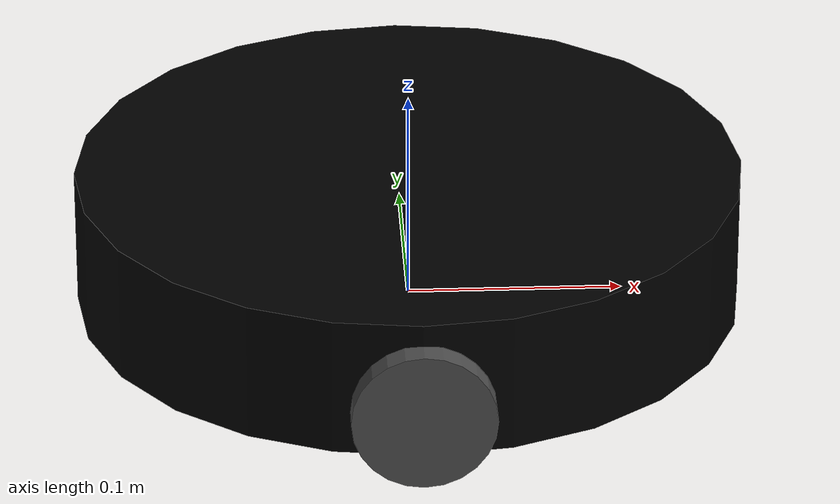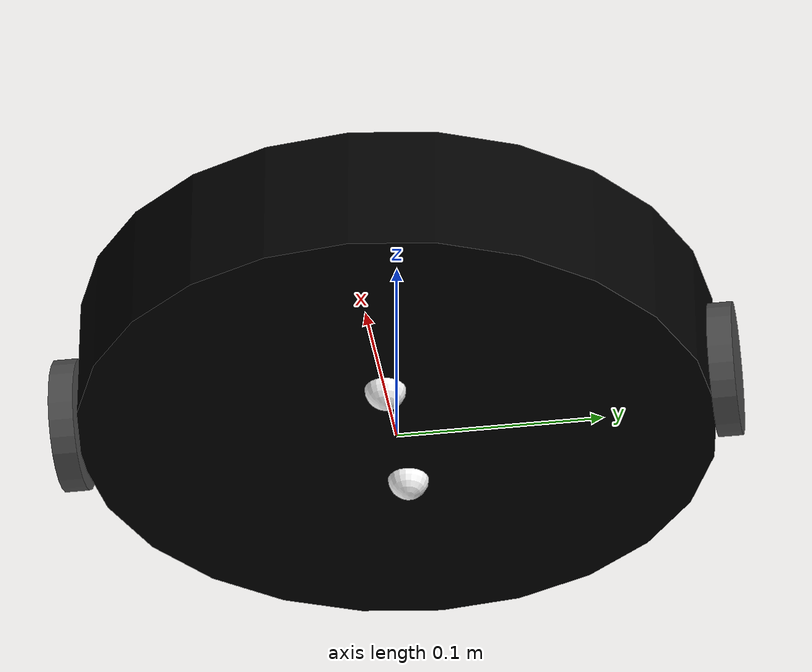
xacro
<?xml version="1.0"?>
<robot xmlns:xacro="http://www.ros.org/wiki/xacro">

    <xacro:property name="chassis_radius" value="0.155"/>
    <xacro:property name="chassis_length" value="0.065"/>
    <xacro:property name="chassis_mass" value="1.5"/>
    <xacro:property name="chassis_offset_z" value="0.0325"/>

    <xacro:property name="wheel_radius" value="0.0325"/>
    <xacro:property name="wheel_thickness" value="0.012"/>
    <xacro:property name="wheel_mass" value="0.05"/>
    <xacro:property name="wheel_offset_y" value="0.160"/>
    <xacro:property name="wheel_offset_z" value="-0.010"/>

    <xacro:property name="caster_wheel_radius" value="0.010"/>
    <xacro:property name="caster_wheel_mass" value="0.02"/>
    <xacro:property name="caster_wheel_offset_x" value="0.038"/>

    <xacro:include filename="inertial_macros.xacro"/>

    <material name="white">
        <color rgba="1 1 1 1"/>
    </material>

    <material name="blue">
        <color rgba="0.2 0.2 1 1"/>
    </material>

    <material name="black">
        <color rgba="0 0 0 1"/>
    </material>

    <material name="dark_grey">
        <color rgba="0.3 0.3 0.3 1"/>
    </material>

    <!-- Base link: ground reference frame -->

    <link name="base_link"/>

    <!-- BASE_FOOTPRINT LINK-->

    <joint name="base_footprint_joint" type="fixed">
        <parent link="base_link"/>
        <child link="base_footprint"/>
        <origin xyz="0 0 0" rpy="0 0 0"/>
    </joint>

    <link name="base_footprint"/>

    <!-- Chassis -->

    <joint name="chassis_joint" type="fixed">
        <parent link="base_link"/>
        <child link="chassis"/>
        <origin xyz="0 0 0.0325"/>
    </joint>

    <link name="chassis">
        <visual>
            <origin xyz="0.0 0.0 0.0" rpy="0.0 0.0 0.0"/>
            <geometry>
                <cylinder radius="0.155" length="0.065"/>
            </geometry>
            <material name="black"/>
        </visual>
        <collision>
            <origin xyz="0.0 0.0 0.0" rpy="0.0 0.0 0.0"/>
            <geometry>
                <cylinder radius="0.155" length="0.065"/>
            </geometry>
        </collision>
        <xacro:inertial_cylinder mass="1.5" length="0.065" radius="0.155">
            <origin xyz="0 0 0" rpy="0 0 0"/>
        </xacro:inertial_cylinder>
    </link>

    <!-- Left wheel -->

    <joint name="left_wheel_joint" type="continuous">
        <parent link="chassis"/>
        <child link="left_wheel"/>
        <origin xyz="0 0.160 -0.010" rpy="-1.5707 0 0"/>
        <axis xyz="0 0 1"/>
    </joint>

    <link name="left_wheel">
        <visual>
            <geometry>
                <cylinder radius="0.0325" length="0.012"/>
            </geometry>
            <material name="dark_grey"/>
        </visual>
        <collision>
            <geometry>
                <cylinder radius="0.0325" length="0.012"/>
            </geometry>
        </collision>
        <xacro:inertial_cylinder mass="0.05" length="0.012" radius="0.0325">
            <origin xyz="0 0 0" rpy="0 0 0"/>
        </xacro:inertial_cylinder>
    </link>

    <!-- Right wheel -->

    <joint name="right_wheel_joint" type="continuous">
        <parent link="chassis"/>
        <child link="right_wheel"/>
        <origin xyz="0 -0.160 -0.010" rpy="-1.5707 0 0"/>
        <axis xyz="0 0 1"/>
    </joint>

    <link name="right_wheel">
        <visual>
            <origin xyz="0 0 0" rpy="0 0 0"/>
            <geometry>
                <cylinder radius="0.0325" length="0.012"/>
            </geometry>
            <material name="dark_grey"/>
        </visual>
        <collision>
            <origin xyz="0 0 0" rpy="0 0 0"/>
            <geometry>
                <cylinder radius="0.0325" length="0.012"/>
            </geometry>
        </collision>
        <xacro:inertial_cylinder mass="0.05" length="0.012" radius="0.0325">
            <origin xyz="0 0 0" rpy="0 0 0"/>
        </xacro:inertial_cylinder>
    </link>

    <!-- Right caster wheel (all offset lives in the joint; link-local
         origins are identity so the offset isn't applied twice) -->

    <joint name="right_caster_joint" type="fixed">
        <parent link="base_link"/>
        <child link="right_caster_link"/>
        <origin xyz="0.038 0.0 0.0" rpy="0.0 0.0 0.0"/>
    </joint>

    <link name="right_caster_link">
        <visual>
            <geometry>
                <sphere radius="0.010"/>
            </geometry>
            <material name="white"/>
        </visual>
        <collision>
            <geometry>
                <sphere radius="0.010"/>
            </geometry>
        </collision>
        <xacro:inertial_sphere mass="0.02" radius="0.010">
            <origin xyz="0 0 0" rpy="0 0 0"/>
        </xacro:inertial_sphere>
    </link>

    <!-- Left caster wheel -->

    <joint name="left_caster_joint" type="fixed">
        <parent link="base_link"/>
        <child link="left_caster_link"/>
        <origin xyz="-0.038 0.0 0.0" rpy="0.0 0.0 0.0"/>
    </joint>

    <link name="left_caster_link">
        <visual>
            <geometry>
                <sphere radius="0.010"/>
            </geometry>
            <material name="white"/>
        </visual>
        <collision>
            <geometry>
                <sphere radius="0.010"/>
            </geometry>
        </collision>
        <xacro:inertial_sphere mass="0.02" radius="0.010">
            <origin xyz="0 0 0" rpy="0 0 0"/>
        </xacro:inertial_sphere>
    </link>

</robot>
